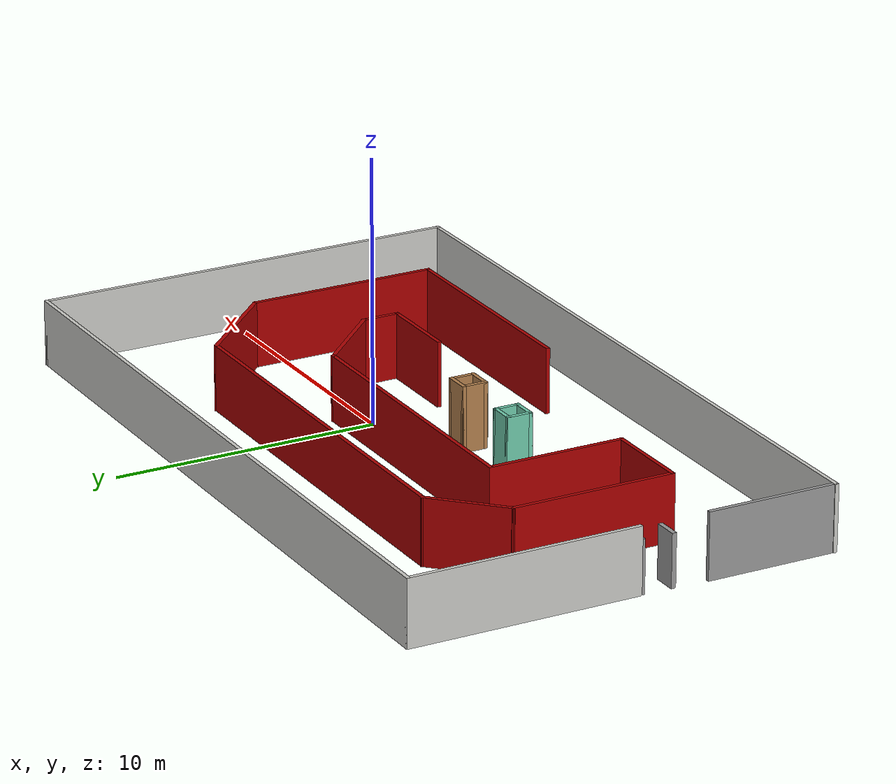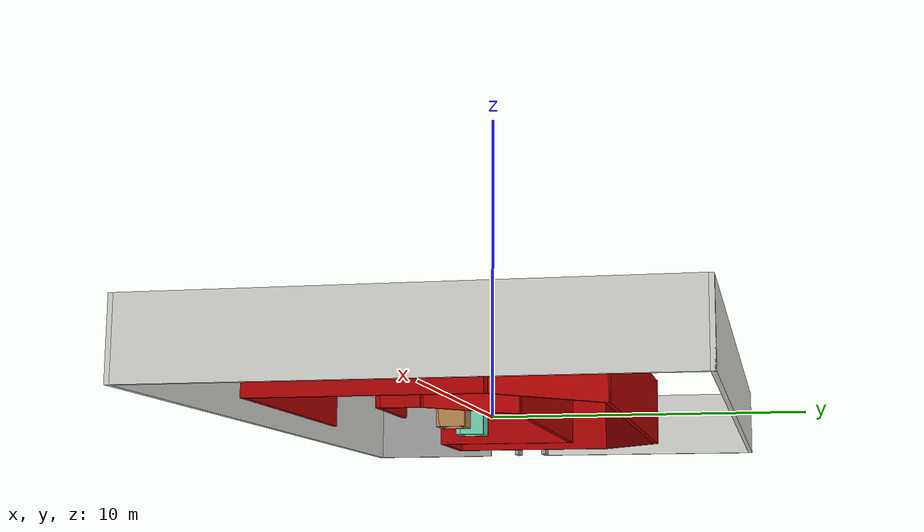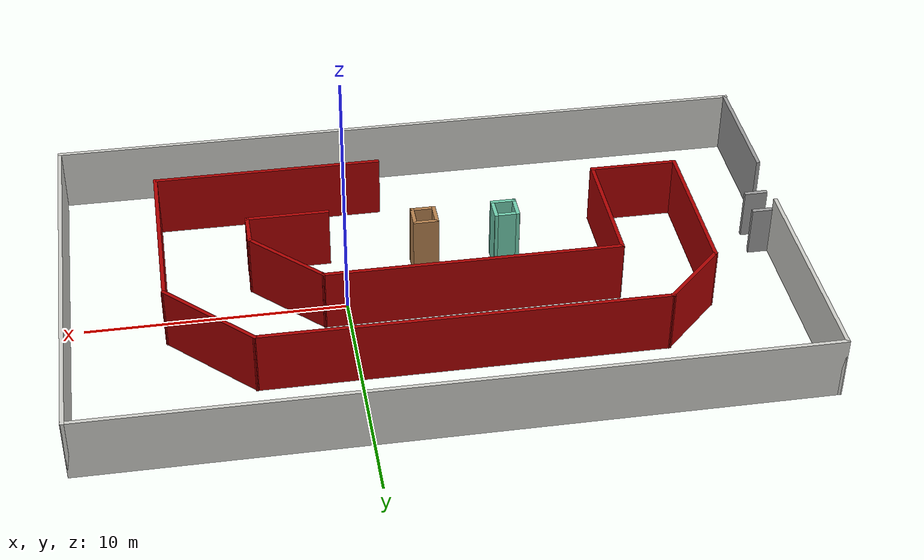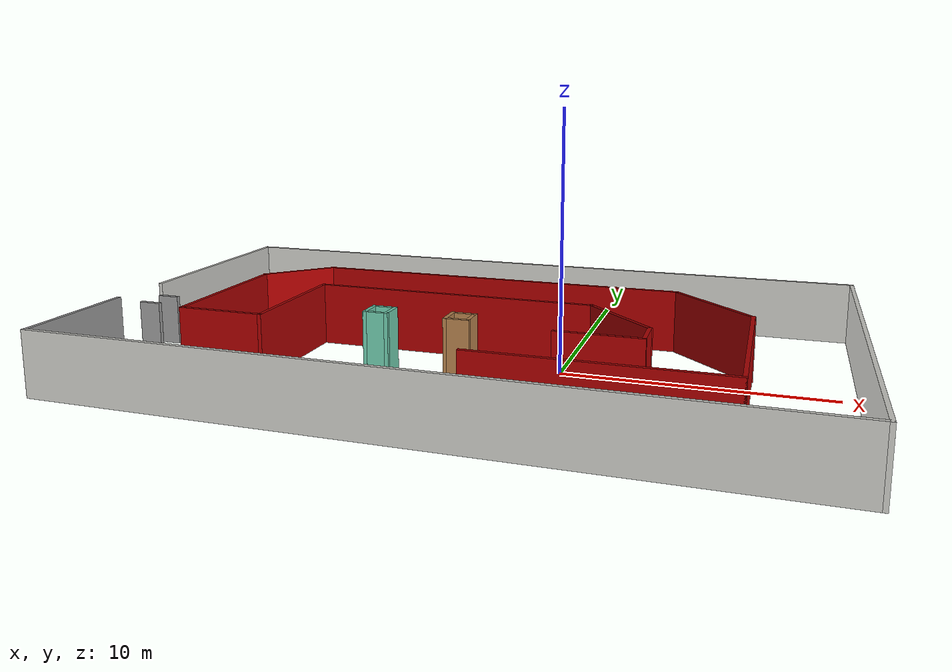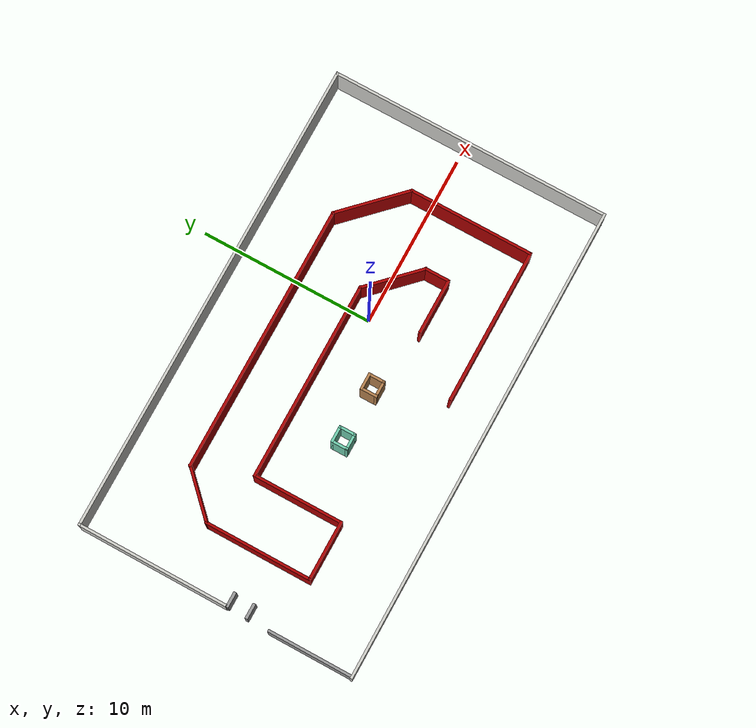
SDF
<?xml version='1.0'?>
<sdf version='1.6'>
  <model name='SimpleFloor'>
    <pose frame=''>-3.24558 -0.325794 0 0 -0 0</pose>
    <link name='Door_0'>
      <collision name='Door_0_Collision'>
        <geometry>
          <box>
            <size>0.9 0.17 2</size>
          </box>
        </geometry>
        <pose frame=''>0 0 1 0 -0 0</pose>
      </collision>
      <visual name='Door_0_Visual'>
        <pose frame=''>0 0 1 0 -0 0</pose>
        <geometry>
          <box>
            <size>0.9 0.17 2</size>
          </box>
        </geometry>
        <material>
          <script>
            <uri>file://media/materials/scripts/gazebo.material</uri>
            <name>Gazebo/Grey</name>
          </script>
        </material>
      </visual>
      <pose frame=''>-13.3393 -0.662316 0 0 -0 0</pose>
    </link>
    <link name='Door_1'>
      <collision name='Door_1_Collision'>
        <geometry>
          <box>
            <size>0.9 0.17 2</size>
          </box>
        </geometry>
        <pose frame=''>0 0 1 0 -0 0</pose>
      </collision>
      <visual name='Door_1_Visual'>
        <pose frame=''>0 0 1 0 -0 0</pose>
        <geometry>
          <box>
            <size>0.9 0.17 2</size>
          </box>
        </geometry>
        <material>
          <script>
            <uri>file://media/materials/scripts/gazebo.material</uri>
            <name>Gazebo/Grey</name>
          </script>
        </material>
      </visual>
      <pose frame=''>-13.3768 -1.82291 0 0 -0 0</pose>
    </link>
    <link name='Wall_10'>
      <collision name='Wall_10_Collision'>
        <geometry>
          <box>
            <size>1 0.15 2.5</size>
          </box>
        </geometry>
        <pose frame=''>0 0 1.25 0 -0 0</pose>
      </collision>
      <visual name='Wall_10_Visual'>
        <pose frame=''>0 0 1.25 0 -0 0</pose>
        <geometry>
          <box>
            <size>1 0.15 2.5</size>
          </box>
        </geometry>
        <material>
          <script>
            <uri>file://media/materials/scripts/gazebo.material</uri>
            <name>Gazebo/Grey</name>
          </script>
          <ambient>0.435294 0.796078 0.67451 1</ambient>
        </material>
        <meta>
          <layer>0</layer>
        </meta>
      </visual>
      <pose frame=''>-3.21858 -1.28803 0 0 -0 0</pose>
    </link>
    <link name='Wall_11'>
      <collision name='Wall_11_Collision'>
        <geometry>
          <box>
            <size>1 0.15 2.5</size>
          </box>
        </geometry>
        <pose frame=''>0 0 1.25 0 -0 0</pose>
      </collision>
      <visual name='Wall_11_Visual'>
        <pose frame=''>0 0 1.25 0 -0 0</pose>
        <geometry>
          <box>
            <size>1 0.15 2.5</size>
          </box>
        </geometry>
        <material>
          <script>
            <uri>file://media/materials/scripts/gazebo.material</uri>
            <name>Gazebo/Grey</name>
          </script>
          <ambient>0.435294 0.796078 0.67451 1</ambient>
        </material>
        <meta>
          <layer>0</layer>
        </meta>
      </visual>
      <pose frame=''>-2.79358 -1.71303 0 0 0 -1.5708</pose>
    </link>
    <link name='Wall_12'>
      <collision name='Wall_12_Collision'>
        <geometry>
          <box>
            <size>1 0.15 2.5</size>
          </box>
        </geometry>
        <pose frame=''>0 0 1.25 0 -0 0</pose>
      </collision>
      <visual name='Wall_12_Visual'>
        <pose frame=''>0 0 1.25 0 -0 0</pose>
        <geometry>
          <box>
            <size>1 0.15 2.5</size>
          </box>
        </geometry>
        <material>
          <script>
            <uri>file://media/materials/scripts/gazebo.material</uri>
            <name>Gazebo/Grey</name>
          </script>
          <ambient>0.435294 0.796078 0.67451 1</ambient>
        </material>
        <meta>
          <layer>0</layer>
        </meta>
      </visual>
      <pose frame=''>-3.21858 -2.13803 0 0 -0 3.14159</pose>
    </link>
    <link name='Wall_15'>
      <collision name='Wall_15_Collision'>
        <geometry>
          <box>
            <size>1 0.15 2.5</size>
          </box>
        </geometry>
        <pose frame=''>0 0 1.25 0 -0 0</pose>
      </collision>
      <visual name='Wall_15_Visual'>
        <pose frame=''>0 0 1.25 0 -0 0</pose>
        <geometry>
          <box>
            <size>1 0.15 2.5</size>
          </box>
        </geometry>
        <material>
          <script>
            <uri>file://media/materials/scripts/gazebo.material</uri>
            <name>Gazebo/Wood</name>
          </script>
          <ambient>1 1 1 1</ambient>
        </material>
        <meta>
          <layer>0</layer>
        </meta>
      </visual>
      <pose frame=''>-0.048758 -1.28744 0 0 -0 0</pose>
    </link>
    <link name='Wall_16'>
      <collision name='Wall_16_Collision'>
        <geometry>
          <box>
            <size>1 0.15 2.5</size>
          </box>
        </geometry>
        <pose frame=''>0 0 1.25 0 -0 0</pose>
      </collision>
      <visual name='Wall_16_Visual'>
        <pose frame=''>0 0 1.25 0 -0 0</pose>
        <geometry>
          <box>
            <size>1 0.15 2.5</size>
          </box>
        </geometry>
        <material>
          <script>
            <uri>file://media/materials/scripts/gazebo.material</uri>
            <name>Gazebo/Wood</name>
          </script>
          <ambient>1 1 1 1</ambient>
        </material>
        <meta>
          <layer>0</layer>
        </meta>
      </visual>
      <pose frame=''>0.376242 -1.71244 0 0 0 -1.5708</pose>
    </link>
    <link name='Wall_17'>
      <collision name='Wall_17_Collision'>
        <geometry>
          <box>
            <size>1 0.15 2.5</size>
          </box>
        </geometry>
        <pose frame=''>0 0 1.25 0 -0 0</pose>
      </collision>
      <visual name='Wall_17_Visual'>
        <pose frame=''>0 0 1.25 0 -0 0</pose>
        <geometry>
          <box>
            <size>1 0.15 2.5</size>
          </box>
        </geometry>
        <material>
          <script>
            <uri>file://media/materials/scripts/gazebo.material</uri>
            <name>Gazebo/Wood</name>
          </script>
          <ambient>1 1 1 1</ambient>
        </material>
        <meta>
          <layer>0</layer>
        </meta>
      </visual>
      <pose frame=''>-0.048758 -2.13744 0 0 -0 3.14159</pose>
    </link>
    <link name='Wall_18'>
      <collision name='Wall_18_Collision'>
        <geometry>
          <box>
            <size>1 0.15 2.5</size>
          </box>
        </geometry>
        <pose frame=''>0 0 1.25 0 -0 0</pose>
      </collision>
      <visual name='Wall_18_Visual'>
        <pose frame=''>0 0 1.25 0 -0 0</pose>
        <geometry>
          <box>
            <size>1 0.15 2.5</size>
          </box>
        </geometry>
        <material>
          <script>
            <uri>file://media/materials/scripts/gazebo.material</uri>
            <name>Gazebo/Wood</name>
          </script>
          <ambient>1 1 1 1</ambient>
        </material>
        <meta>
          <layer>0</layer>
        </meta>
      </visual>
      <pose frame=''>-0.473758 -1.71244 0 0 -0 1.5708</pose>
    </link>
    <link name='Wall_20'>
      <collision name='Wall_20_Collision'>
        <geometry>
          <box>
            <size>9 0.15 2.5</size>
          </box>
        </geometry>
        <pose frame=''>0 0 1.25 0 -0 0</pose>
      </collision>
      <visual name='Wall_20_Visual'>
        <pose frame=''>0 0 1.25 0 -0 0</pose>
        <geometry>
          <box>
            <size>9 0.15 2.5</size>
          </box>
        </geometry>
        <material>
          <script>
            <uri>file://media/materials/scripts/gazebo.material</uri>
            <name>Gazebo/Grey</name>
          </script>
          <ambient>0.666667 0 0 1</ambient>
        </material>
        <meta>
          <layer>0</layer>
        </meta>
      </visual>
      <pose frame=''>5.69409 -5.61498 0 0 -0 0</pose>
    </link>
    <link name='Wall_21'>
      <collision name='Wall_21_Collision'>
        <geometry>
          <box>
            <size>7.25 0.15 2.5</size>
          </box>
        </geometry>
        <pose frame=''>0 0 1.25 0 -0 0</pose>
      </collision>
      <visual name='Wall_21_Visual'>
        <pose frame=''>0 0 1.25 0 -0 0</pose>
        <geometry>
          <box>
            <size>7.25 0.15 2.5</size>
          </box>
        </geometry>
        <material>
          <script>
            <uri>file://media/materials/scripts/gazebo.material</uri>
            <name>Gazebo/Grey</name>
          </script>
          <ambient>0.666667 0 0 1</ambient>
        </material>
        <meta>
          <layer>0</layer>
        </meta>
      </visual>
      <pose frame=''>10.1191 -2.06498 0 0 -0 1.5708</pose>
    </link>
    <link name='Wall_22'>
      <collision name='Wall_22_Collision'>
        <geometry>
          <box>
            <size>4.5 0.15 2.5</size>
          </box>
        </geometry>
        <pose frame=''>0 0 1.25 0 -0 0</pose>
      </collision>
      <visual name='Wall_22_Visual'>
        <pose frame=''>0 0 1.25 0 -0 0</pose>
        <geometry>
          <box>
            <size>4.5 0.15 2.5</size>
          </box>
        </geometry>
        <material>
          <script>
            <uri>file://media/materials/scripts/gazebo.material</uri>
            <name>Gazebo/Grey</name>
          </script>
          <ambient>0.666667 0 0 1</ambient>
        </material>
        <meta>
          <layer>0</layer>
        </meta>
      </visual>
      <pose frame=''>8.58113 3.02298 0 0 -0 2.35619</pose>
    </link>
    <link name='Wall_23'>
      <collision name='Wall_23_Collision'>
        <geometry>
          <box>
            <size>15.5 0.15 2.5</size>
          </box>
        </geometry>
        <pose frame=''>0 0 1.25 0 -0 0</pose>
      </collision>
      <visual name='Wall_23_Visual'>
        <pose frame=''>0 0 1.25 0 -0 0</pose>
        <geometry>
          <box>
            <size>15.5 0.15 2.5</size>
          </box>
        </geometry>
        <material>
          <script>
            <uri>file://media/materials/scripts/gazebo.material</uri>
            <name>Gazebo/Grey</name>
          </script>
          <ambient>0.666667 0 0 1</ambient>
        </material>
        <meta>
          <layer>0</layer>
        </meta>
      </visual>
      <pose frame=''>-0.631822 4.56093 0 0 -0 3.14159</pose>
    </link>
    <link name='Wall_24'>
      <collision name='Wall_24_Collision'>
        <geometry>
          <box>
            <size>3.25 0.15 2.5</size>
          </box>
        </geometry>
        <pose frame=''>0 0 1.25 0 -0 0</pose>
      </collision>
      <visual name='Wall_24_Visual'>
        <pose frame=''>0 0 1.25 0 -0 0</pose>
        <geometry>
          <box>
            <size>3.25 0.15 2.5</size>
          </box>
        </geometry>
        <material>
          <script>
            <uri>file://media/materials/scripts/gazebo.material</uri>
            <name>Gazebo/Grey</name>
          </script>
          <ambient>0.666667 0 0 1</ambient>
        </material>
        <meta>
          <layer>0</layer>
        </meta>
      </visual>
      <pose frame=''>-9.40284 3.46492 0 0 0 -2.35619</pose>
    </link>
    <link name='Wall_25'>
      <collision name='Wall_25_Collision'>
        <geometry>
          <box>
            <size>6.25 0.15 2.5</size>
          </box>
        </geometry>
        <pose frame=''>0 0 1.25 0 -0 0</pose>
      </collision>
      <visual name='Wall_25_Visual'>
        <pose frame=''>0 0 1.25 0 -0 0</pose>
        <geometry>
          <box>
            <size>6.25 0.15 2.5</size>
          </box>
        </geometry>
        <material>
          <script>
            <uri>file://media/materials/scripts/gazebo.material</uri>
            <name>Gazebo/Grey</name>
          </script>
          <ambient>0.666667 0 0 1</ambient>
        </material>
        <meta>
          <layer>0</layer>
        </meta>
      </visual>
      <pose frame=''>-10.4989 -0.681097 0 0 0 -1.5708</pose>
    </link>
    <link name='Wall_26'>
      <collision name='Wall_26_Collision'>
        <geometry>
          <box>
            <size>3.5 0.15 2.5</size>
          </box>
        </geometry>
        <pose frame=''>0 0 1.25 0 -0 0</pose>
      </collision>
      <visual name='Wall_26_Visual'>
        <pose frame=''>0 0 1.25 0 -0 0</pose>
        <geometry>
          <box>
            <size>3.5 0.15 2.5</size>
          </box>
        </geometry>
        <material>
          <script>
            <uri>file://media/materials/scripts/gazebo.material</uri>
            <name>Gazebo/Grey</name>
          </script>
          <ambient>0.666667 0 0 1</ambient>
        </material>
        <meta>
          <layer>0</layer>
        </meta>
      </visual>
      <pose frame=''>-8.82385 -3.7311 0 0 -0 0</pose>
    </link>
    <link name='Wall_27'>
      <collision name='Wall_27_Collision'>
        <geometry>
          <box>
            <size>5.25 0.15 2.5</size>
          </box>
        </geometry>
        <pose frame=''>0 0 1.25 0 -0 0</pose>
      </collision>
      <visual name='Wall_27_Visual'>
        <pose frame=''>0 0 1.25 0 -0 0</pose>
        <geometry>
          <box>
            <size>5.25 0.15 2.5</size>
          </box>
        </geometry>
        <material>
          <script>
            <uri>file://media/materials/scripts/gazebo.material</uri>
            <name>Gazebo/Grey</name>
          </script>
          <ambient>0.666667 0 0 1</ambient>
        </material>
        <meta>
          <layer>0</layer>
        </meta>
      </visual>
      <pose frame=''>-7.14885 -1.1811 0 0 -0 1.5708</pose>
    </link>
    <link name='Wall_28'>
      <collision name='Wall_28_Collision'>
        <geometry>
          <box>
            <size>11.5 0.15 2.5</size>
          </box>
        </geometry>
        <pose frame=''>0 0 1.25 0 -0 0</pose>
      </collision>
      <visual name='Wall_28_Visual'>
        <pose frame=''>0 0 1.25 0 -0 0</pose>
        <geometry>
          <box>
            <size>11.5 0.15 2.5</size>
          </box>
        </geometry>
        <material>
          <script>
            <uri>file://media/materials/scripts/gazebo.material</uri>
            <name>Gazebo/Grey</name>
          </script>
          <ambient>0.666667 0 0 1</ambient>
        </material>
        <meta>
          <layer>0</layer>
        </meta>
      </visual>
      <pose frame=''>-1.47385 1.3689 0 0 -0 0</pose>
    </link>
    <link name='Wall_29'>
      <collision name='Wall_29_Collision'>
        <geometry>
          <box>
            <size>3.75 0.15 2.5</size>
          </box>
        </geometry>
        <pose frame=''>0 0 1.25 0 -0 0</pose>
      </collision>
      <visual name='Wall_29_Visual'>
        <pose frame=''>0 0 1.25 0 -0 0</pose>
        <geometry>
          <box>
            <size>3.75 0.15 2.5</size>
          </box>
        </geometry>
        <material>
          <script>
            <uri>file://media/materials/scripts/gazebo.material</uri>
            <name>Gazebo/Grey</name>
          </script>
          <ambient>0.666667 0 0 1</ambient>
        </material>
        <meta>
          <layer>0</layer>
        </meta>
      </visual>
      <pose frame=''>5.47394 0.09611 0 0 0 -0.785398</pose>
    </link>
    <link name='Wall_3'>
      <collision name='Wall_3_Collision'>
        <geometry>
          <box>
            <size>8.75 0.15 2.5</size>
          </box>
        </geometry>
        <pose frame=''>0 0 1.25 0 -0 0</pose>
      </collision>
      <visual name='Wall_3_Visual'>
        <pose frame=''>0 0 1.25 0 -0 0</pose>
        <geometry>
          <box>
            <size>8.75 0.15 2.5</size>
          </box>
        </geometry>
        <material>
          <script>
            <uri>file://media/materials/scripts/gazebo.material</uri>
            <name>Gazebo/CeilingTiled</name>
          </script>
          <ambient>1 1 1 1</ambient>
        </material>
        <meta>
          <layer>0</layer>
        </meta>
      </visual>
      <pose frame=''>-13.7512 3.75 0 0 -0 1.5708</pose>
    </link>
    <link name='Wall_30'>
      <collision name='Wall_30_Collision'>
        <geometry>
          <box>
            <size>1.5 0.15 2.5</size>
          </box>
        </geometry>
        <pose frame=''>0 0 1.25 0 -0 0</pose>
      </collision>
      <visual name='Wall_30_Visual'>
        <pose frame=''>0 0 1.25 0 -0 0</pose>
        <geometry>
          <box>
            <size>1.5 0.15 2.5</size>
          </box>
        </geometry>
        <material>
          <script>
            <uri>file://media/materials/scripts/gazebo.material</uri>
            <name>Gazebo/Grey</name>
          </script>
          <ambient>0.666667 0 0 1</ambient>
        </material>
        <meta>
          <layer>0</layer>
        </meta>
      </visual>
      <pose frame=''>6.74673 -1.85168 0 0 0 -1.5708</pose>
    </link>
    <link name='Wall_31'>
      <collision name='Wall_31_Collision'>
        <geometry>
          <box>
            <size>3.25 0.15 2.5</size>
          </box>
        </geometry>
        <pose frame=''>0 0 1.25 0 -0 0</pose>
      </collision>
      <visual name='Wall_31_Visual'>
        <pose frame=''>0 0 1.25 0 -0 0</pose>
        <geometry>
          <box>
            <size>3.25 0.15 2.5</size>
          </box>
        </geometry>
        <material>
          <script>
            <uri>file://media/materials/scripts/gazebo.material</uri>
            <name>Gazebo/Grey</name>
          </script>
          <ambient>0.666667 0 0 1</ambient>
        </material>
        <meta>
          <layer>0</layer>
        </meta>
      </visual>
      <pose frame=''>5.19673 -2.52668 0 0 -0 3.14159</pose>
    </link>
    <link name='Wall_4'>
      <collision name='Wall_4_Collision'>
        <geometry>
          <box>
            <size>27.75 0.15 2.5</size>
          </box>
        </geometry>
        <pose frame=''>0 0 1.25 0 -0 0</pose>
      </collision>
      <visual name='Wall_4_Visual'>
        <pose frame=''>0 0 1.25 0 -0 0</pose>
        <geometry>
          <box>
            <size>27.75 0.15 2.5</size>
          </box>
        </geometry>
        <material>
          <script>
            <uri>file://media/materials/scripts/gazebo.material</uri>
            <name>Gazebo/CeilingTiled</name>
          </script>
          <ambient>1 1 1 1</ambient>
        </material>
        <meta>
          <layer>0</layer>
        </meta>
      </visual>
      <pose frame=''>0.048832 8.05 0 0 -0 0</pose>
    </link>
    <link name='Wall_5'>
      <collision name='Wall_5_Collision'>
        <geometry>
          <box>
            <size>16.25 0.15 2.5</size>
          </box>
        </geometry>
        <pose frame=''>0 0 1.25 0 -0 0</pose>
      </collision>
      <visual name='Wall_5_Visual'>
        <pose frame=''>0 0 1.25 0 -0 0</pose>
        <geometry>
          <box>
            <size>16.25 0.15 2.5</size>
          </box>
        </geometry>
        <material>
          <script>
            <uri>file://media/materials/scripts/gazebo.material</uri>
            <name>Gazebo/CeilingTiled</name>
          </script>
          <ambient>1 1 1 1</ambient>
        </material>
        <meta>
          <layer>0</layer>
        </meta>
      </visual>
      <pose frame=''>13.8488 0 0 0 0 -1.5708</pose>
    </link>
    <link name='Wall_6'>
      <collision name='Wall_6_Collision'>
        <geometry>
          <box>
            <size>27.8477 0.15 2.5</size>
          </box>
        </geometry>
        <pose frame=''>0 0 1.25 0 -0 0</pose>
      </collision>
      <visual name='Wall_6_Visual'>
        <pose frame=''>0 0 1.25 0 -0 0</pose>
        <geometry>
          <box>
            <size>27.8477 0.15 2.5</size>
          </box>
        </geometry>
        <material>
          <script>
            <uri>file://media/materials/scripts/gazebo.material</uri>
            <name>Gazebo/CeilingTiled</name>
          </script>
          <ambient>1 1 1 1</ambient>
        </material>
        <meta>
          <layer>0</layer>
        </meta>
      </visual>
      <pose frame=''>-1e-06 -8.05 0 0 0 -3.14159</pose>
    </link>
    <link name='Wall_7'>
      <collision name='Wall_7_Collision'>
        <geometry>
          <box>
            <size>5 0.15 2.5</size>
          </box>
        </geometry>
        <pose frame=''>0 0 1.25 0 -0 0</pose>
      </collision>
      <visual name='Wall_7_Visual'>
        <pose frame=''>0 0 1.25 0 -0 0</pose>
        <geometry>
          <box>
            <size>5 0.15 2.5</size>
          </box>
        </geometry>
        <material>
          <script>
            <uri>file://media/materials/scripts/gazebo.material</uri>
            <name>Gazebo/Grey</name>
          </script>
          <ambient>1 1 1 1</ambient>
        </material>
        <meta>
          <layer>0</layer>
        </meta>
      </visual>
      <pose frame=''>-13.8163 -5.625 0 0 -0 1.5708</pose>
    </link>
    <link name='Wall_9'>
      <collision name='Wall_9_Collision'>
        <geometry>
          <box>
            <size>1 0.15 2.5</size>
          </box>
        </geometry>
        <pose frame=''>0 0 1.25 0 -0 0</pose>
      </collision>
      <visual name='Wall_9_Visual'>
        <pose frame=''>0 0 1.25 0 -0 0</pose>
        <geometry>
          <box>
            <size>1 0.15 2.5</size>
          </box>
        </geometry>
        <material>
          <script>
            <uri>file://media/materials/scripts/gazebo.material</uri>
            <name>Gazebo/Grey</name>
          </script>
          <ambient>0.435294 0.796078 0.67451 1</ambient>
        </material>
        <meta>
          <layer>0</layer>
        </meta>
      </visual>
      <pose frame=''>-3.64358 -1.71303 0 0 -0 1.5708</pose>
    </link>
    <static>1</static>
  </model>
</sdf>
